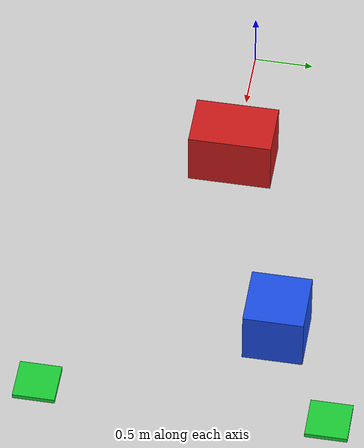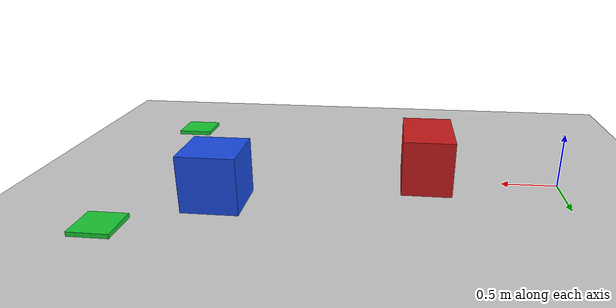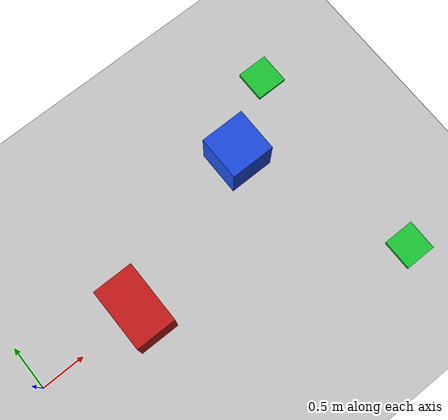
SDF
<?xml version="1.0" ?>
<sdf version="1.6">
  <world name="mapless_charging_test">
    <include>
      <uri>model://sun</uri>
    </include>

    <include>
      <uri>model://ground_plane</uri>
    </include>

    <model name="start_obstacle">
      <static>true</static>
      <pose>1.2 0.0 0.25 0 0 0</pose>
      <link name="link">
        <collision name="collision">
          <geometry>
            <box>
              <size>0.45 0.70 0.50</size>
            </box>
          </geometry>
        </collision>
        <visual name="visual">
          <geometry>
            <box>
              <size>0.45 0.70 0.50</size>
            </box>
          </geometry>
          <material>
            <ambient>0.8 0.1 0.1 1</ambient>
            <diffuse>0.8 0.1 0.1 1</diffuse>
          </material>
        </visual>
      </link>
    </model>

    <model name="charger_area_obstacle">
      <static>true</static>
      <pose>3.0 0.65 0.25 0 0 0</pose>
      <link name="link">
        <collision name="collision">
          <geometry>
            <box>
              <size>0.50 0.50 0.50</size>
            </box>
          </geometry>
        </collision>
        <visual name="visual">
          <geometry>
            <box>
              <size>0.50 0.50 0.50</size>
            </box>
          </geometry>
          <material>
            <ambient>0.1 0.3 0.9 1</ambient>
            <diffuse>0.1 0.3 0.9 1</diffuse>
          </material>
        </visual>
      </link>
    </model>

    <model name="charger_1_marker">
      <static>true</static>
      <pose>3.8 1.2 0.02 0 0 0</pose>
      <link name="link">
        <visual name="visual">
          <geometry>
            <box>
              <size>0.35 0.35 0.04</size>
            </box>
          </geometry>
          <material>
            <ambient>0.1 0.8 0.2 1</ambient>
            <diffuse>0.1 0.8 0.2 1</diffuse>
          </material>
        </visual>
      </link>
    </model>

    <model name="charger_2_marker">
      <static>true</static>
      <pose>3.8 -1.2 0.02 0 0 0</pose>
      <link name="link">
        <visual name="visual">
          <geometry>
            <box>
              <size>0.35 0.35 0.04</size>
            </box>
          </geometry>
          <material>
            <ambient>0.1 0.8 0.2 1</ambient>
            <diffuse>0.1 0.8 0.2 1</diffuse>
          </material>
        </visual>
      </link>
    </model>
  </world>
</sdf>
